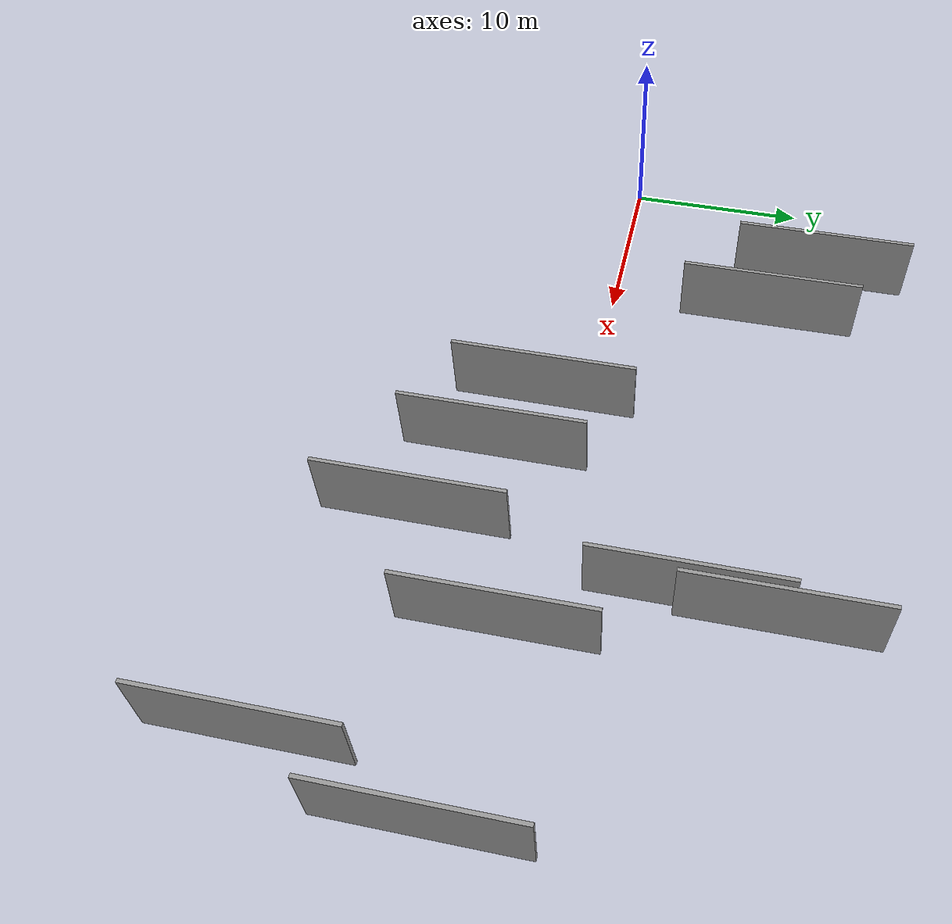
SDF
<sdf version="1.6">
 <world name="default">
  <scene>
   <sky><clouds><speed>12</speed></clouds></sky>
   <ambient>0.4 0.4 0.4 1</ambient>
   <background>0.7 0.7 0.7 1</background>
   <shadows>1</shadows>
  </scene>
  <gravity>0 0 -9.8066</gravity>
  <magnetic_field>6e-06 2.3e-05 -4.2e-05</magnetic_field>
  <physics default="0" name="default_physics" type="ode">
   <ode>
    <solver>
     <type>quick</type>
     <iters>10</iters>
     <sor>1.0</sor>
     <use_dynamic_moi_rescaling>0</use_dynamic_moi_rescaling>
    </solver>
    <constraints>
     <cfm>0</cfm>
     <erp>0.2</erp>
     <contact_max_correcting_vel>100</contact_max_correcting_vel>
     <contact_surface_layer>0.001</contact_surface_layer>
    </constraints>
   </ode>
   <max_step_size>0.004</max_step_size>
   <real_time_factor>1</real_time_factor>
   <real_time_update_rate>250</real_time_update_rate>
  </physics>
  <light name="sun" type="directional">
   <pose>0 0 10 0 0 0</pose>
   <diffuse>0.8 0.8 0.8 1</diffuse>
   <specular>0.2 0.2 0.2 1</specular>
   <attenuation>
    <range>1000</range>
    <constant>0.9</constant>
    <linear>0.01</linear>
    <quadratic>0.001</quadratic>
   </attenuation>
   <direction>-0.5 0.1 -0.9</direction>
  </light>
  <model name="grey_wall_1">
   <static>1</static>
   <pose>32.4350 -1.5657 0.0 0.000000 0.000000 1.570796</pose>
   <link name="link">
    <pose>0 0 2.00 0 0 0</pose>
    <collision name="collision"><geometry><box><size>10.00 0.2 4.00</size></box></geometry></collision>
    <visual name="visual">
     <cast_shadows>0</cast_shadows>
     <geometry><box><size>10.00 0.2 4.00</size></box></geometry>
     <material>
      <script>
       <uri>model://grey_wall/materials/scripts</uri>
       <uri>model://grey_wall/materials/textures</uri>
       <name>vrc/grey_wall</name>
      </script>
     </material>
    </visual>
   </link>
  </model>
  <model name="grey_wall_2">
   <static>1</static>
   <pose>27.0698 -7.1824 0.0 0.000000 0.000000 1.570796</pose>
   <link name="link">
    <pose>0 0 2.00 0 0 0</pose>
    <collision name="collision"><geometry><box><size>10.00 0.2 4.00</size></box></geometry></collision>
    <visual name="visual">
     <cast_shadows>0</cast_shadows>
     <geometry><box><size>10.00 0.2 4.00</size></box></geometry>
     <material>
      <script>
       <uri>model://grey_wall/materials/scripts</uri>
       <uri>model://grey_wall/materials/textures</uri>
       <name>vrc/grey_wall</name>
      </script>
     </material>
    </visual>
   </link>
  </model>
  <model name="grey_wall_3">
   <static>1</static>
   <pose>29.2260 6.9287 0.0 0.000000 0.000000 1.570796</pose>
   <link name="link">
    <pose>0 0 2.00 0 0 0</pose>
    <collision name="collision"><geometry><box><size>10.00 0.2 4.00</size></box></geometry></collision>
    <visual name="visual">
     <cast_shadows>0</cast_shadows>
     <geometry><box><size>10.00 0.2 4.00</size></box></geometry>
     <material>
      <script>
       <uri>model://grey_wall/materials/scripts</uri>
       <uri>model://grey_wall/materials/textures</uri>
       <name>vrc/grey_wall</name>
      </script>
     </material>
    </visual>
   </link>
  </model>
  <model name="grey_wall_4">
   <static>1</static>
   <pose>5.6415 11.7356 0.0 0.000000 0.000000 1.570796</pose>
   <link name="link">
    <pose>0 0 2.00 0 0 0</pose>
    <collision name="collision"><geometry><box><size>10.00 0.2 4.00</size></box></geometry></collision>
    <visual name="visual">
     <cast_shadows>0</cast_shadows>
     <geometry><box><size>10.00 0.2 4.00</size></box></geometry>
     <material>
      <script>
       <uri>model://grey_wall/materials/scripts</uri>
       <uri>model://grey_wall/materials/textures</uri>
       <name>vrc/grey_wall</name>
      </script>
     </material>
    </visual>
   </link>
  </model>
  <model name="grey_wall_5">
   <static>1</static>
   <pose>29.7260 11.3852 0.0 0.000000 0.000000 1.570796</pose>
   <link name="link">
    <pose>0 0 2.00 0 0 0</pose>
    <collision name="collision"><geometry><box><size>10.00 0.2 4.00</size></box></geometry></collision>
    <visual name="visual">
     <cast_shadows>0</cast_shadows>
     <geometry><box><size>10.00 0.2 4.00</size></box></geometry>
     <material>
      <script>
       <uri>model://grey_wall/materials/scripts</uri>
       <uri>model://grey_wall/materials/textures</uri>
       <name>vrc/grey_wall</name>
      </script>
     </material>
    </visual>
   </link>
  </model>
  <model name="grey_wall_6">
   <static>1</static>
   <pose>39.7512 -11.0556 0.0 0.000000 0.000000 1.570796</pose>
   <link name="link">
    <pose>0 0 2.00 0 0 0</pose>
    <collision name="collision"><geometry><box><size>10.00 0.2 4.00</size></box></geometry></collision>
    <visual name="visual">
     <cast_shadows>0</cast_shadows>
     <geometry><box><size>10.00 0.2 4.00</size></box></geometry>
     <material>
      <script>
       <uri>model://grey_wall/materials/scripts</uri>
       <uri>model://grey_wall/materials/textures</uri>
       <name>vrc/grey_wall</name>
      </script>
     </material>
    </visual>
   </link>
  </model>
  <model name="grey_wall_7">
   <static>1</static>
   <pose>22.1555 -4.2428 0.0 0.000000 0.000000 1.570796</pose>
   <link name="link">
    <pose>0 0 2.00 0 0 0</pose>
    <collision name="collision"><geometry><box><size>10.00 0.2 4.00</size></box></geometry></collision>
    <visual name="visual">
     <cast_shadows>0</cast_shadows>
     <geometry><box><size>10.00 0.2 4.00</size></box></geometry>
     <material>
      <script>
       <uri>model://grey_wall/materials/scripts</uri>
       <uri>model://grey_wall/materials/textures</uri>
       <name>vrc/grey_wall</name>
      </script>
     </material>
    </visual>
   </link>
  </model>
  <model name="grey_wall_8">
   <static>1</static>
   <pose>9.6633 8.9758 0.0 0.000000 0.000000 1.570796</pose>
   <link name="link">
    <pose>0 0 2.00 0 0 0</pose>
    <collision name="collision"><geometry><box><size>10.00 0.2 4.00</size></box></geometry></collision>
    <visual name="visual">
     <cast_shadows>0</cast_shadows>
     <geometry><box><size>10.00 0.2 4.00</size></box></geometry>
     <material>
      <script>
       <uri>model://grey_wall/materials/scripts</uri>
       <uri>model://grey_wall/materials/textures</uri>
       <name>vrc/grey_wall</name>
      </script>
     </material>
    </visual>
   </link>
  </model>
  <model name="grey_wall_9">
   <static>1</static>
   <pose>18.1418 -2.4048 0.0 0.000000 0.000000 1.570796</pose>
   <link name="link">
    <pose>0 0 2.00 0 0 0</pose>
    <collision name="collision"><geometry><box><size>10.00 0.2 4.00</size></box></geometry></collision>
    <visual name="visual">
     <cast_shadows>0</cast_shadows>
     <geometry><box><size>10.00 0.2 4.00</size></box></geometry>
     <material>
      <script>
       <uri>model://grey_wall/materials/scripts</uri>
       <uri>model://grey_wall/materials/textures</uri>
       <name>vrc/grey_wall</name>
      </script>
     </material>
    </visual>
   </link>
  </model>
  <model name="grey_wall_10">
   <static>1</static>
   <pose>42.1784 -2.4437 0.0 0.000000 0.000000 1.570796</pose>
   <link name="link">
    <pose>0 0 2.00 0 0 0</pose>
    <collision name="collision"><geometry><box><size>10.00 0.2 4.00</size></box></geometry></collision>
    <visual name="visual">
     <cast_shadows>0</cast_shadows>
     <geometry><box><size>10.00 0.2 4.00</size></box></geometry>
     <material>
      <script>
       <uri>model://grey_wall/materials/scripts</uri>
       <uri>model://grey_wall/materials/textures</uri>
       <name>vrc/grey_wall</name>
      </script>
     </material>
    </visual>
   </link>
  </model>
 </world>
</sdf>
